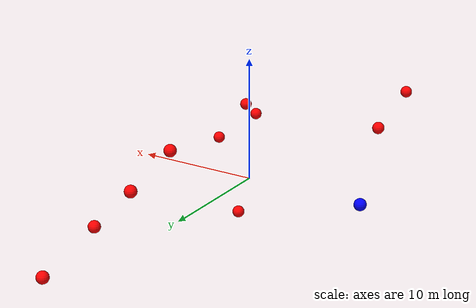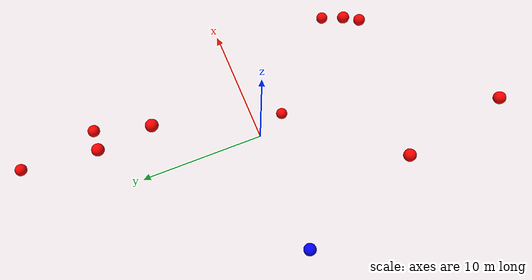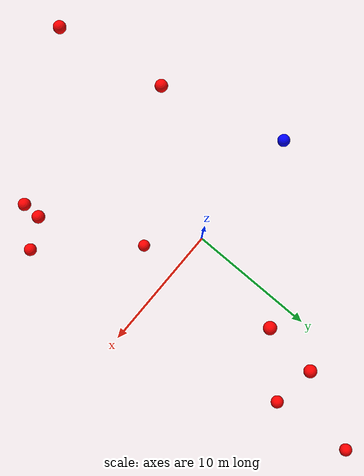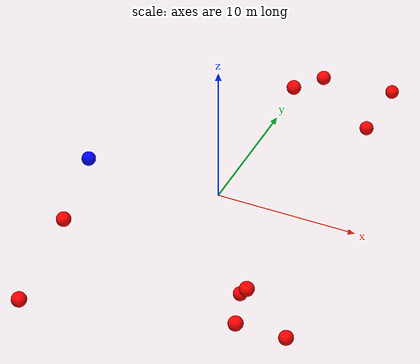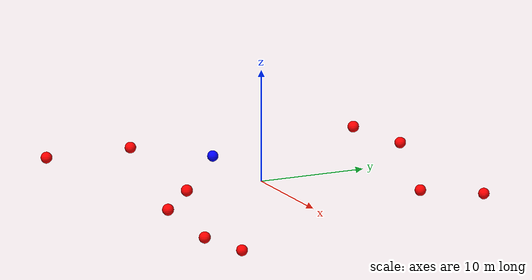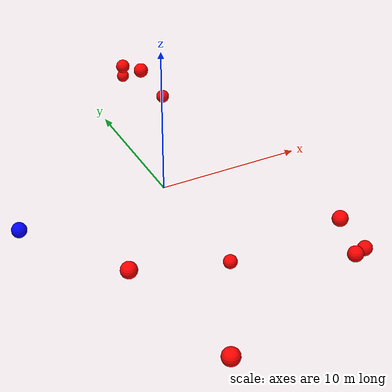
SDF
<?xml version="1.0" ?>
<sdf version="1.8">
    <world name="3d_world">
        <physics name="1ms" type="ode">
            <max_step_size>0.001</max_step_size>
            <real_time_factor>1.0</real_time_factor>
            <real_time_update_rate>1000.0</real_time_update_rate>
        </physics>
        <gravity>0 0 0</gravity>

        <plugin
            filename="gz-sim-physics-system"
            name="gz::sim::v8::systems::Physics">
        </plugin>
        <plugin
            filename="libignition-gazebo-user-commands-system.so"
            name="ignition::gazebo::systems::UserCommands">
        </plugin>
        <plugin
            filename="gz-sim-scene-broadcaster-system"
            name="gz::sim::systems::SceneBroadcaster">
        </plugin>
        <plugin
            filename="gz-sim-sensors-system"
            name="gz::sim::systems::Sensors">
            <render_engine>ogre2</render_engine>
        </plugin>

        <light type="directional" name="sun">
            <cast_shadows>true</cast_shadows>
            <pose>0 0 10 0 0 0</pose>
            <diffuse>0.8 0.8 0.8 1</diffuse>
            <specular>0.2 0.2 0.2 1</specular>
            <attenuation>
                <range>1000</range>
                <constant>0.9</constant>
                <linear>0.01</linear>
                <quadratic>0.001</quadratic>
            </attenuation>
            <direction>-0.5 0.1 -0.9</direction>
        </light>

        <!-- AGENTE -->
        <model name='agente' canonical_link='chassis'>
            <pose relative_to='world'>-10.0 0 0.0 0 0 0</pose>
            <link name='chassis'>
                <pose relative_to='__model__'>0.0 0 0.0 0 0 0</pose>
                <inertial>
                    <mass>1.14395</mass>
                    <inertia>
                        <ixx>0.095329</ixx>
                        <ixy>0</ixy>
                        <ixz>0</ixz>
                        <iyy>0.381317</iyy>
                        <iyz>0</iyz>
                        <izz>0.476646</izz>
                    </inertia>
                </inertial>
                <visual name='visual'>
                    <geometry>
                        <sphere>
                            <radius>0.5</radius>
                        </sphere>
                    </geometry>
                    <material>
                        <ambient>0.0 0.0 1.0 1</ambient>
                        <diffuse>0.0 0.0 1.0 1</diffuse>
                        <specular>0.0 0.0 1.0 1</specular>
                    </material>
                </visual>
                <collision name='collision'>
                    <geometry>
                        <sphere>
                            <radius>0.5</radius>
                        </sphere>
                    </geometry>
                </collision>
                <enable_gravity>false</enable_gravity>
            </link>

            <link name='lidar_link'>
                <pose relative_to='chassis'>0.0 0 0.1 0 0 0</pose>
                <inertial>
                    <mass>0.1</mass>
                    <inertia>
                        <ixx>0.000166667</ixx>
                        <iyy>0.000166667</iyy>
                        <izz>0.000166667</izz>
                    </inertia>
                </inertial>
                <collision name='collision'>
                    <geometry>
                        <cylinder>
                            <radius>0.05</radius>
                            <length>0.1</length>
                        </cylinder>
                    </geometry>
                </collision>
                <visual name='visual'>
                    <geometry>
                        <cylinder>
                            <radius>0.05</radius>
                            <length>0.1</length>
                        </cylinder>
                    </geometry>
                    <material>
                        <ambient>0.0 1.0 0.0 1</ambient>
                        <diffuse>0.0 1.0 0.0 1</diffuse>
                        <specular>0.0 1.0 0.0 1</specular>
                    </material>
                </visual>
                <sensor name="lidar" type="gpu_lidar">
                    <topic>scan</topic>
                    <update_rate>10</update_rate>
                    <lidar>
                        <scan>
                            <horizontal>
                                <samples>5000</samples>
                                <resolution>1</resolution>
                                <min_angle>-3.14159</min_angle>
                                <max_angle>3.14159</max_angle>
                            </horizontal>
                        </scan>
                        <range>
                            <min>0.1</min>
                            <max>10.0</max>
                            <resolution>0.01</resolution>
                        </range>
                    </lidar>
                    <visualize>true</visualize>
                    <always_on>true</always_on>
                    <update_rate>10</update_rate>
                    <pose_frame>lidar</pose_frame>
                </sensor>
                <enable_gravity>false</enable_gravity>
            </link>

            <joint name="lidar_joint" type="fixed">
                <parent>chassis</parent>
                <child>lidar_link</child>
            </joint>

            <plugin
                filename="ignition-gazebo-joint-state-publisher-system"
                name="ignition::gazebo::systems::JointStatePublisher">
            </plugin>
            <plugin
                filename="ignition-gazebo-odometry-publisher-system"
                name="ignition::gazebo::systems::OdometryPublisher">
                <dimensions>3</dimensions>
            </plugin>
            <plugin
                filename="ignition-gazebo-velocity-control-system"
                name="ignition::gazebo::systems::VelocityControl">
                <initial_linear>0.0 0 0</initial_linear>
                <initial_angular>0 0 0.0</initial_angular>
            </plugin>
            <plugin
                filename="libignition-gazebo-pose-publisher-system.so"
                name="ignition::gazebo::systems::PosePublisher">
                <topic>/agente/pose</topic>
                <frame_id>agente</frame_id>
                <update_rate>30</update_rate>
            </plugin>
        </model>

        <!-- OBSTACLE 1 -->
        <model name='obstacle_1' canonical_link='obstacle'>
            <static>false</static>
            <pose relative_to='world'>5.39 19.34 -2.08 0 0 0</pose>
            <link name='obstacle'>
                <pose relative_to='__model__'>0.0 0 0.0 0 0 0</pose>
                <visual name='visual'>
                    <geometry>
                        <sphere>
                            <radius>0.50</radius>
                        </sphere>
                    </geometry>
                    <material>
                        <ambient>1.0 0.0 0.0 1</ambient>
                        <diffuse>1.0 0.0 0.0 1</diffuse>
                        <specular>1.0 0.0 0.0 1</specular>
                    </material>
                </visual>
                <collision name='collision'>
                    <geometry>
                        <sphere>
                            <radius>0.50</radius>
                        </sphere>
                    </geometry>
                </collision>
                <enable_gravity>false</enable_gravity>
            </link>

            <plugin
                filename="ignition-gazebo-velocity-control-system"
                name="ignition::gazebo::systems::VelocityControl">
                <initial_linear>-0.01 -1.99 0.21</initial_linear>
                <initial_angular>0 0 0</initial_angular>
            </plugin>

            <plugin
                filename="ignition-gazebo-odometry-publisher-system"
                name="ignition::gazebo::systems::OdometryPublisher">
                <dimensions>3</dimensions>
            </plugin>
        </model>

        <!-- OBSTACLE 2 -->
        <model name='obstacle_2' canonical_link='obstacle'>
            <static>false</static>
            <pose relative_to='world'>-6.66 -9.57 2.63 0 0 0</pose>
            <link name='obstacle'>
                <pose relative_to='__model__'>0.0 0 0.0 0 0 0</pose>
                <visual name='visual'>
                    <geometry>
                        <sphere>
                            <radius>0.50</radius>
                        </sphere>
                    </geometry>
                    <material>
                        <ambient>1.0 0.0 0.0 1</ambient>
                        <diffuse>1.0 0.0 0.0 1</diffuse>
                        <specular>1.0 0.0 0.0 1</specular>
                    </material>
                </visual>
                <collision name='collision'>
                    <geometry>
                        <sphere>
                            <radius>0.50</radius>
                        </sphere>
                    </geometry>
                </collision>
                <enable_gravity>false</enable_gravity>
            </link>

            <plugin
                filename="ignition-gazebo-velocity-control-system"
                name="ignition::gazebo::systems::VelocityControl">
                <initial_linear>0.41 1.89 -0.52</initial_linear>
                <initial_angular>0 0 0</initial_angular>
            </plugin>

            <plugin
                filename="ignition-gazebo-odometry-publisher-system"
                name="ignition::gazebo::systems::OdometryPublisher">
                <dimensions>3</dimensions>
            </plugin>
        </model>

        <!-- OBSTACLE 3 -->
        <model name='obstacle_3' canonical_link='obstacle'>
            <static>false</static>
            <pose relative_to='world'>6.79 -12.09 0.60 0 0 0</pose>
            <link name='obstacle'>
                <pose relative_to='__model__'>0.0 0 0.0 0 0 0</pose>
                <visual name='visual'>
                    <geometry>
                        <sphere>
                            <radius>0.50</radius>
                        </sphere>
                    </geometry>
                    <material>
                        <ambient>1.0 0.0 0.0 1</ambient>
                        <diffuse>1.0 0.0 0.0 1</diffuse>
                        <specular>1.0 0.0 0.0 1</specular>
                    </material>
                </visual>
                <collision name='collision'>
                    <geometry>
                        <sphere>
                            <radius>0.50</radius>
                        </sphere>
                    </geometry>
                </collision>
                <enable_gravity>false</enable_gravity>
            </link>

            <plugin
                filename="ignition-gazebo-velocity-control-system"
                name="ignition::gazebo::systems::VelocityControl">
                <initial_linear>-1.28 1.53 -0.08</initial_linear>
                <initial_angular>0 0 0</initial_angular>
            </plugin>

            <plugin
                filename="ignition-gazebo-odometry-publisher-system"
                name="ignition::gazebo::systems::OdometryPublisher">
                <dimensions>3</dimensions>
            </plugin>
        </model>

        <!-- OBSTACLE 4 -->
        <model name='obstacle_4' canonical_link='obstacle'>
            <static>false</static>
            <pose relative_to='world'>2.56 12.38 2.72 0 0 0</pose>
            <link name='obstacle'>
                <pose relative_to='__model__'>0.0 0 0.0 0 0 0</pose>
                <visual name='visual'>
                    <geometry>
                        <sphere>
                            <radius>0.50</radius>
                        </sphere>
                    </geometry>
                    <material>
                        <ambient>1.0 0.0 0.0 1</ambient>
                        <diffuse>1.0 0.0 0.0 1</diffuse>
                        <specular>1.0 0.0 0.0 1</specular>
                    </material>
                </visual>
                <collision name='collision'>
                    <geometry>
                        <sphere>
                            <radius>0.50</radius>
                        </sphere>
                    </geometry>
                </collision>
                <enable_gravity>false</enable_gravity>
            </link>

            <plugin
                filename="ignition-gazebo-velocity-control-system"
                name="ignition::gazebo::systems::VelocityControl">
                <initial_linear>-0.91 -1.74 -0.38</initial_linear>
                <initial_angular>0 0 0</initial_angular>
            </plugin>

            <plugin
                filename="ignition-gazebo-odometry-publisher-system"
                name="ignition::gazebo::systems::OdometryPublisher">
                <dimensions>3</dimensions>
            </plugin>
        </model>

        <!-- OBSTACLE 5 -->
        <model name='obstacle_5' canonical_link='obstacle'>
            <static>false</static>
            <pose relative_to='world'>6.75 -10.32 2.05 0 0 0</pose>
            <link name='obstacle'>
                <pose relative_to='__model__'>0.0 0 0.0 0 0 0</pose>
                <visual name='visual'>
                    <geometry>
                        <sphere>
                            <radius>0.50</radius>
                        </sphere>
                    </geometry>
                    <material>
                        <ambient>1.0 0.0 0.0 1</ambient>
                        <diffuse>1.0 0.0 0.0 1</diffuse>
                        <specular>1.0 0.0 0.0 1</specular>
                    </material>
                </visual>
                <collision name='collision'>
                    <geometry>
                        <sphere>
                            <radius>0.50</radius>
                        </sphere>
                    </geometry>
                </collision>
                <enable_gravity>false</enable_gravity>
            </link>

            <plugin
                filename="ignition-gazebo-velocity-control-system"
                name="ignition::gazebo::systems::VelocityControl">
                <initial_linear>-1.47 1.33 -0.26</initial_linear>
                <initial_angular>0 0 0</initial_angular>
            </plugin>

            <plugin
                filename="ignition-gazebo-odometry-publisher-system"
                name="ignition::gazebo::systems::OdometryPublisher">
                <dimensions>3</dimensions>
            </plugin>
        </model>

        <!-- OBSTACLE 6 -->
        <model name='obstacle_6' canonical_link='obstacle'>
            <static>false</static>
            <pose relative_to='world'>5.93 12.60 -0.84 0 0 0</pose>
            <link name='obstacle'>
                <pose relative_to='__model__'>0.0 0 0.0 0 0 0</pose>
                <visual name='visual'>
                    <geometry>
                        <sphere>
                            <radius>0.50</radius>
                        </sphere>
                    </geometry>
                    <material>
                        <ambient>1.0 0.0 0.0 1</ambient>
                        <diffuse>1.0 0.0 0.0 1</diffuse>
                        <specular>1.0 0.0 0.0 1</specular>
                    </material>
                </visual>
                <collision name='collision'>
                    <geometry>
                        <sphere>
                            <radius>0.50</radius>
                        </sphere>
                    </geometry>
                </collision>
                <enable_gravity>false</enable_gravity>
            </link>

            <plugin
                filename="ignition-gazebo-velocity-control-system"
                name="ignition::gazebo::systems::VelocityControl">
                <initial_linear>-1.00 -1.73 0.12</initial_linear>
                <initial_angular>0 0 0</initial_angular>
            </plugin>

            <plugin
                filename="ignition-gazebo-odometry-publisher-system"
                name="ignition::gazebo::systems::OdometryPublisher">
                <dimensions>3</dimensions>
            </plugin>
        </model>

        <!-- OBSTACLE 7 -->
        <model name='obstacle_7' canonical_link='obstacle'>
            <static>false</static>
            <pose relative_to='world'>9.32 -9.88 -1.46 0 0 0</pose>
            <link name='obstacle'>
                <pose relative_to='__model__'>0.0 0 0.0 0 0 0</pose>
                <visual name='visual'>
                    <geometry>
                        <sphere>
                            <radius>0.50</radius>
                        </sphere>
                    </geometry>
                    <material>
                        <ambient>1.0 0.0 0.0 1</ambient>
                        <diffuse>1.0 0.0 0.0 1</diffuse>
                        <specular>1.0 0.0 0.0 1</specular>
                    </material>
                </visual>
                <collision name='collision'>
                    <geometry>
                        <sphere>
                            <radius>0.50</radius>
                        </sphere>
                    </geometry>
                </collision>
                <enable_gravity>false</enable_gravity>
            </link>

            <plugin
                filename="ignition-gazebo-velocity-control-system"
                name="ignition::gazebo::systems::VelocityControl">
                <initial_linear>-1.58 1.21 0.18</initial_linear>
                <initial_angular>0 0 0</initial_angular>
            </plugin>

            <plugin
                filename="ignition-gazebo-odometry-publisher-system"
                name="ignition::gazebo::systems::OdometryPublisher">
                <dimensions>3</dimensions>
            </plugin>
        </model>

        <!-- OBSTACLE 8 -->
        <model name='obstacle_8' canonical_link='obstacle'>
            <static>false</static>
            <pose relative_to='world'>-5.10 -18.17 3.06 0 0 0</pose>
            <link name='obstacle'>
                <pose relative_to='__model__'>0.0 0 0.0 0 0 0</pose>
                <visual name='visual'>
                    <geometry>
                        <sphere>
                            <radius>0.50</radius>
                        </sphere>
                    </geometry>
                    <material>
                        <ambient>1.0 0.0 0.0 1</ambient>
                        <diffuse>1.0 0.0 0.0 1</diffuse>
                        <specular>1.0 0.0 0.0 1</specular>
                    </material>
                </visual>
                <collision name='collision'>
                    <geometry>
                        <sphere>
                            <radius>0.50</radius>
                        </sphere>
                    </geometry>
                </collision>
                <enable_gravity>false</enable_gravity>
            </link>

            <plugin
                filename="ignition-gazebo-velocity-control-system"
                name="ignition::gazebo::systems::VelocityControl">
                <initial_linear>0.48 1.91 -0.32</initial_linear>
                <initial_angular>0 0 0</initial_angular>
            </plugin>

            <plugin
                filename="ignition-gazebo-odometry-publisher-system"
                name="ignition::gazebo::systems::OdometryPublisher">
                <dimensions>3</dimensions>
            </plugin>
        </model>

        <!-- OBSTACLE 9 -->
        <model name='obstacle_9' canonical_link='obstacle'>
            <static>false</static>
            <pose relative_to='world'>2.10 7.93 4.56 0 0 0</pose>
            <link name='obstacle'>
                <pose relative_to='__model__'>0.0 0 0.0 0 0 0</pose>
                <visual name='visual'>
                    <geometry>
                        <sphere>
                            <radius>0.50</radius>
                        </sphere>
                    </geometry>
                    <material>
                        <ambient>1.0 0.0 0.0 1</ambient>
                        <diffuse>1.0 0.0 0.0 1</diffuse>
                        <specular>1.0 0.0 0.0 1</specular>
                    </material>
                </visual>
                <collision name='collision'>
                    <geometry>
                        <sphere>
                            <radius>0.50</radius>
                        </sphere>
                    </geometry>
                </collision>
                <enable_gravity>false</enable_gravity>
            </link>

            <plugin
                filename="ignition-gazebo-velocity-control-system"
                name="ignition::gazebo::systems::VelocityControl">
                <initial_linear>0.77 -1.13 -0.65</initial_linear>
                <initial_angular>0 0 0</initial_angular>
            </plugin>

            <plugin
                filename="ignition-gazebo-odometry-publisher-system"
                name="ignition::gazebo::systems::OdometryPublisher">
                <dimensions>3</dimensions>
            </plugin>
        </model>

        <!-- OBSTACLE 10 -->
        <model name='obstacle_10' canonical_link='obstacle'>
            <static>false</static>
            <pose relative_to='world'>3.24 -3.48 -4.97 0 0 0</pose>
            <link name='obstacle'>
                <pose relative_to='__model__'>0.0 0 0.0 0 0 0</pose>
                <visual name='visual'>
                    <geometry>
                        <sphere>
                            <radius>0.50</radius>
                        </sphere>
                    </geometry>
                    <material>
                        <ambient>1.0 0.0 0.0 1</ambient>
                        <diffuse>1.0 0.0 0.0 1</diffuse>
                        <specular>1.0 0.0 0.0 1</specular>
                    </material>
                </visual>
                <collision name='collision'>
                    <geometry>
                        <sphere>
                            <radius>0.50</radius>
                        </sphere>
                    </geometry>
                </collision>
                <enable_gravity>false</enable_gravity>
            </link>

            <plugin
                filename="ignition-gazebo-velocity-control-system"
                name="ignition::gazebo::systems::VelocityControl">
                <initial_linear>-1.01 0.92 1.32</initial_linear>
                <initial_angular>0 0 0</initial_angular>
            </plugin>

            <plugin
                filename="ignition-gazebo-odometry-publisher-system"
                name="ignition::gazebo::systems::OdometryPublisher">
                <dimensions>3</dimensions>
            </plugin>
        </model>

    </world>
</sdf>
